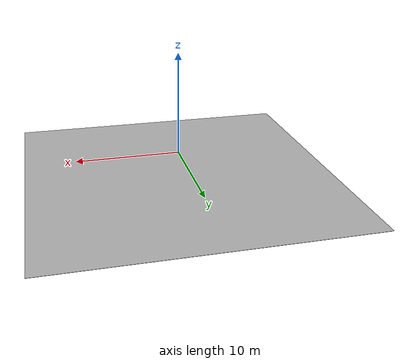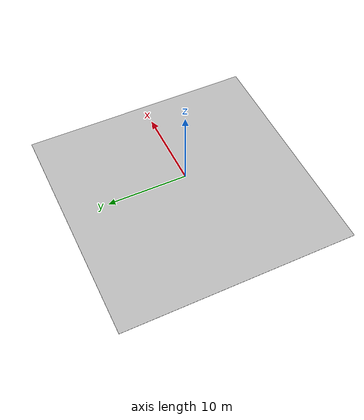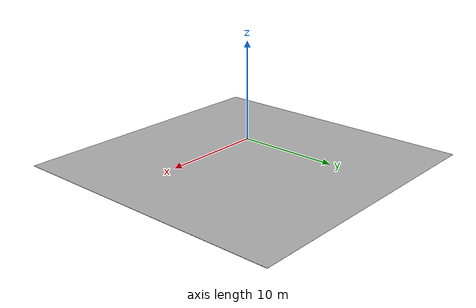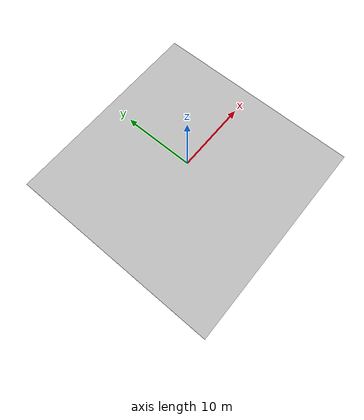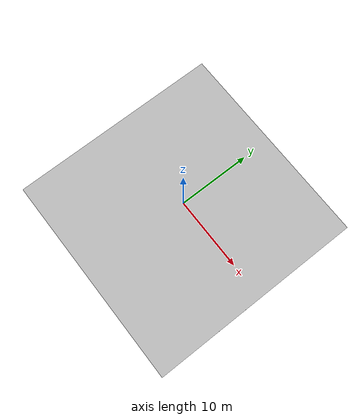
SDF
<sdf version='1.4'>
  <world name='field_world'>

    <include>
      <uri>model://sun</uri>
    </include>

    <model name="water_plane">
      <static>true</static>
      <link name="link">
        <pose>0 0 0 0 0 0</pose>
        <collision name="collision">
          <geometry>
            <plane>
              <normal>0 0 1</normal>
              <size>30 30</size>
            </plane>
          </geometry>
          <surface>
            <friction>
              <ode>
                <mu>100</mu>
                <mu2>50</mu2>
              </ode>
            </friction>
          </surface>
        </collision>
        <visual name="visual">
          <cast_shadows>false</cast_shadows>
          <geometry>
            <plane>
              <normal>0 0 1</normal>
              <size>30 30</size>
            </plane>
          </geometry>
          <material>
            <script>
              <uri>model://linear_algebra_tutorial/materials/water_plane.material</uri>
              <name>linear_algebra_tutorial/map</name>
            </script>
          </material>
        </visual>
      </link>
    </model>

    <model name="reef_plane">
      <static>true</static>
      <link name="link">
        <pose>0 0 -2.3 0 0 0</pose>
        <collision name="collision">
          <geometry>
            <plane>
              <normal>0 0 1</normal>
              <size>30 30</size>
            </plane>
          </geometry>
          <surface>
            <friction>
              <ode>
                <mu>100</mu>
                <mu2>50</mu2>
              </ode>
            </friction>
          </surface>
        </collision>
        <visual name="visual">
          <cast_shadows>false</cast_shadows>
          <geometry>
            <plane>
              <normal>0 0 1</normal>
              <size>30 30</size>
            </plane>
          </geometry>
          <material>
            <script>
              <uri>model://linear_algebra_tutorial/materials/reef_plane.material</uri>
              <name>linear_algebra_tutorial/reef_plane</name>
            </script>
          </material>
        </visual>
      </link>
    </model>

    <physics type="ode">
      <gravity>0 0 -9.8066</gravity>
      <max_step_size>0.001</max_step_size>
      <real_time_update_rate>1000</real_time_update_rate>
    </physics>

  </world>
</sdf>
